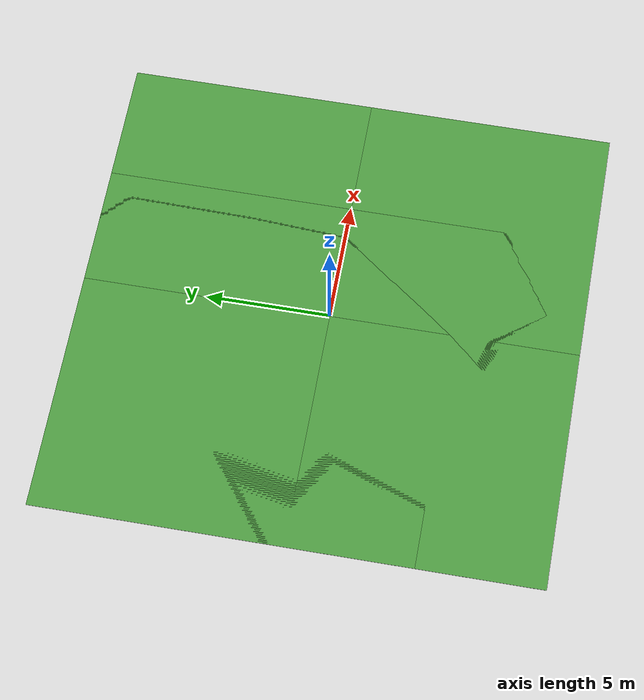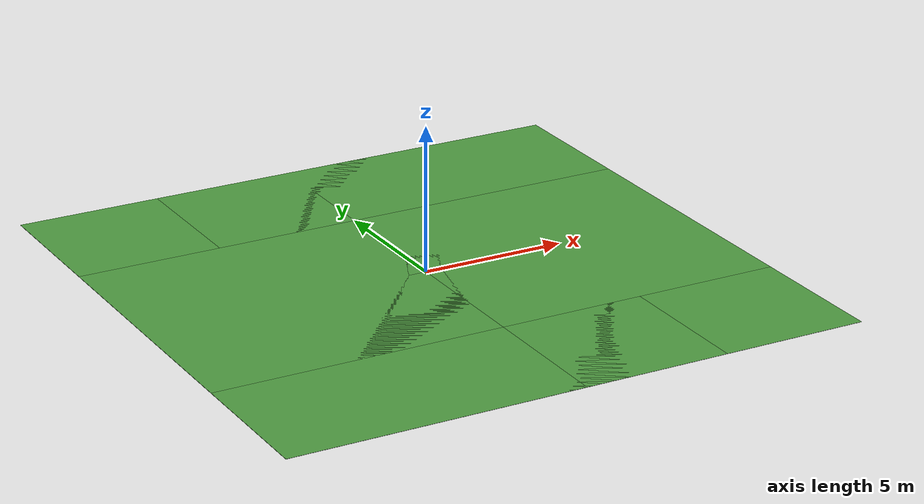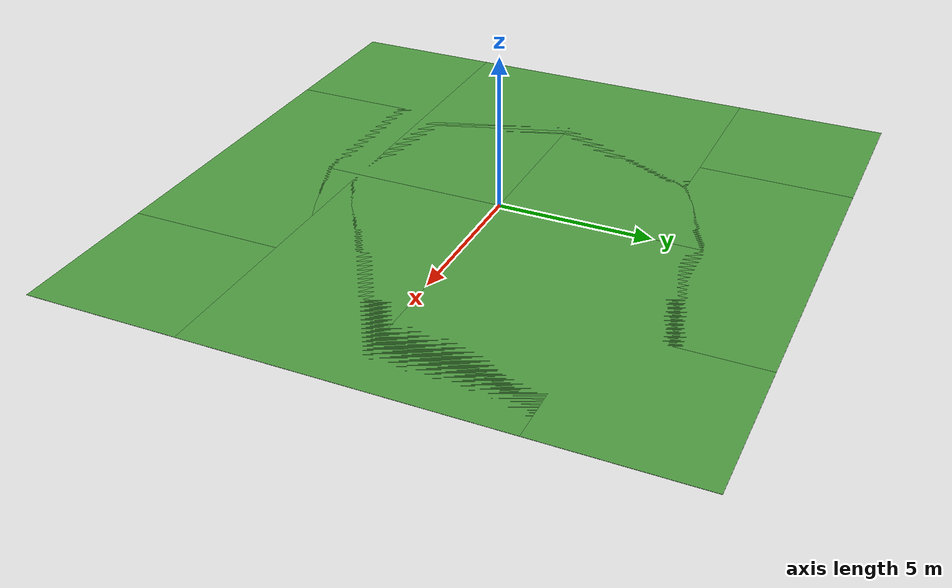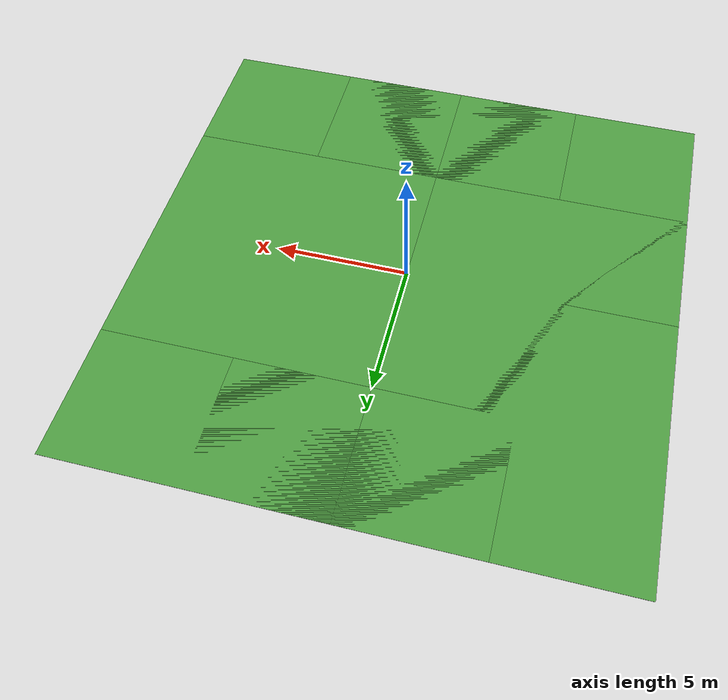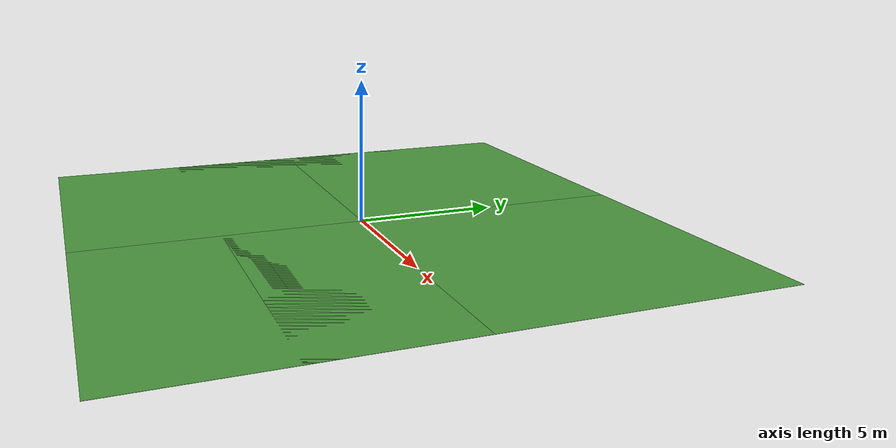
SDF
<?xml version="1.0"?>
<sdf version="1.5">
<model name="garden">
  <static>true</static>
    <link name="link">

	  <!-- TODO: Get own image for texture and figure out how to generate arbitrarily shaped environments -->

	  <!-- Define first a large collision plane -->
      <collision name="collision">
        <geometry>
          <plane>
            <normal>0 0 1</normal>
            <size>100 100</size>
          </plane>
        </geometry>
        <surface>
          <friction>
            <ode>
              <mu>100</mu>
              <mu2>50</mu2>
            </ode>
          </friction>
        </surface>
      </collision>

      <!-- Now we define the visuals -->
      <visual name="visual_0">
		<pose>0 0 0 0 0 0</pose>
        <cast_shadows>false</cast_shadows>
        <geometry>
          <plane>
            <normal>0 0 1</normal>
            <size>10 10</size>
          </plane>
        </geometry>
        <material>
		  <script>
		    <uri>model://garden/materials/scripts</uri>
		    <uri>model://garden/materials/textures</uri>
		    <name>vrc/grass</name>
		  </script>
        </material>
      </visual>
      <visual name="visual_1">
		<pose>5 0 0 0 0 0</pose>
        <cast_shadows>false</cast_shadows>
        <geometry>
          <plane>
            <normal>0 0 1</normal>
            <size>10 10</size>
          </plane>
        </geometry>
        <material>
		  <script>
		    <uri>model://garden/materials/scripts</uri>
		    <uri>model://garden/materials/textures</uri>
		    <name>vrc/grass</name>
		  </script>
        </material>
      </visual>
      <visual name="visual_2">
		<pose>0 5 0 0 0 0</pose>
        <cast_shadows>false</cast_shadows>
        <geometry>
          <plane>
            <normal>0 0 1</normal>
            <size>10 10</size>
          </plane>
        </geometry>
        <material>
		  <script>
		    <uri>model://garden/materials/scripts</uri>
		    <uri>model://garden/materials/textures</uri>
		    <name>vrc/grass</name>
		  </script>
        </material>
      </visual>
      <visual name="visual_3">
		<pose>-5 0 0 0 0 0</pose>
        <cast_shadows>false</cast_shadows>
        <geometry>
          <plane>
            <normal>0 0 1</normal>
            <size>10 10</size>
          </plane>
        </geometry>
        <material>
		  <script>
		    <uri>model://garden/materials/scripts</uri>
		    <uri>model://garden/materials/textures</uri>
		    <name>vrc/grass</name>
		  </script>
        </material>
      </visual>
      <visual name="visual_4">
		<pose>0 -5 0 0 0 0</pose>
        <cast_shadows>false</cast_shadows>
        <geometry>
          <plane>
            <normal>0 0 1</normal>
            <size>10 10</size>
          </plane>
        </geometry>
        <material>
		  <script>
		    <uri>model://garden/materials/scripts</uri>
		    <uri>model://garden/materials/textures</uri>
		    <name>vrc/grass</name>
		  </script>
        </material>
      </visual>
      <visual name="visual_5">
		<pose>5 5 0 0 0 0</pose>
        <cast_shadows>false</cast_shadows>
        <geometry>
          <plane>
            <normal>0 0 1</normal>
            <size>10 10</size>
          </plane>
        </geometry>
        <material>
		  <script>
		    <uri>model://garden/materials/scripts</uri>
		    <uri>model://garden/materials/textures</uri>
		    <name>vrc/grass</name>
		  </script>
        </material>
      </visual>
      <visual name="visual_6">
		<pose>-5 -5 0 0 0 0</pose>
        <cast_shadows>false</cast_shadows>
        <geometry>
          <plane>
            <normal>0 0 1</normal>
            <size>10 10</size>
          </plane>
        </geometry>
        <material>
		  <script>
		    <uri>model://garden/materials/scripts</uri>
		    <uri>model://garden/materials/textures</uri>
		    <name>vrc/grass</name>
		  </script>
        </material>
      </visual>
      <visual name="visual_7">
		<pose>5 -5 0 0 0 0</pose>
        <cast_shadows>false</cast_shadows>
        <geometry>
          <plane>
            <normal>0 0 1</normal>
            <size>10 10</size>
          </plane>
        </geometry>
        <material>
		  <script>
		    <uri>model://garden/materials/scripts</uri>
		    <uri>model://garden/materials/textures</uri>
		    <name>vrc/grass</name>
		  </script>
        </material>
      </visual>
      <visual name="visual_8">
		<pose>-5 5 0 0 0 0</pose>
        <cast_shadows>false</cast_shadows>
        <geometry>
          <plane>
            <normal>0 0 1</normal>
            <size>10 10</size>
          </plane>
        </geometry>
        <material>
		  <script>
		    <uri>model://garden/materials/scripts</uri>
		    <uri>model://garden/materials/textures</uri>
		    <name>vrc/grass</name>
		  </script>
        </material>
      </visual>
    </link>
  </model>
</sdf>
